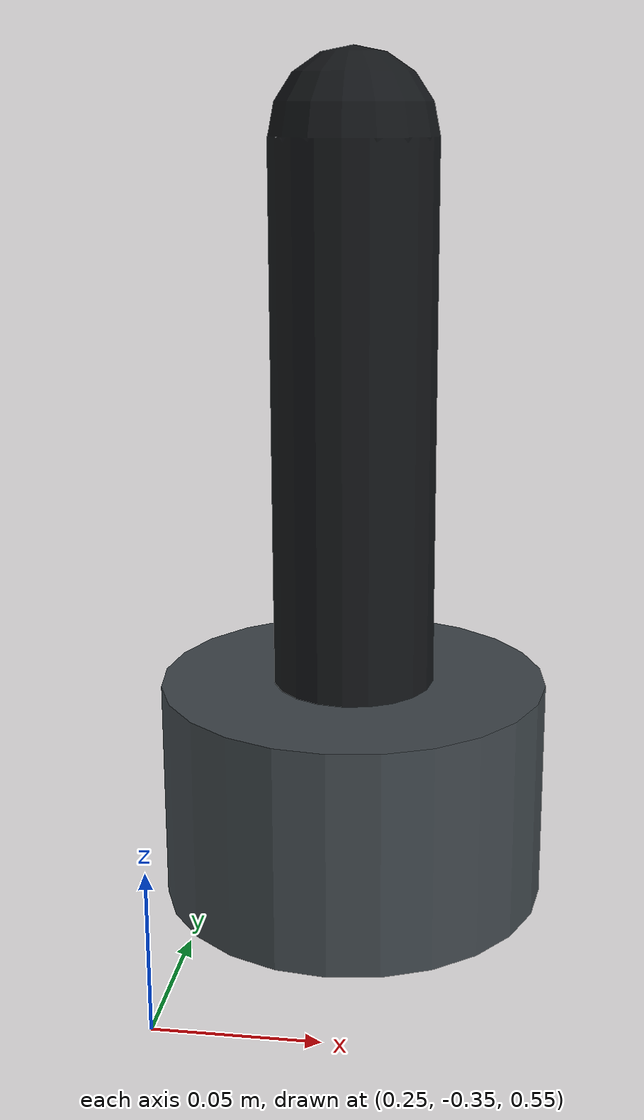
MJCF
<?xml version='1.0' encoding='utf-8'?>
<mujoco model="control_stick">
  <compiler angle="radian" />
  <option timestep="0.002" gravity="0.0 0.0 -9.81" />
  <default>
    <geom friction="0.8 0.01 0.0001" />
  </default>
  <worldbody>
    <light name="control_stick_light" pos="-0.5 -0.5 2" />
    <body name="control_stick_base" pos="0.3 -0.28 0.6">
      <geom name="stick_base_geom" type="cylinder" size="0.06 0.035" contype="0" conaffinity="0" rgba="0.25 0.28 0.30 1" />
      <body name="stick_roll_frame">
        <joint name="stick_roll_joint" type="hinge" axis="1 0 0" range="-0.3 0.3" stiffness="5.0" damping="0.15" frictionloss="0.05" />
        <geom name="stick_roll_hub" type="sphere" size="0.025" mass="0.05" contype="0" conaffinity="0" rgba="0.3 0.32 0.34 1" />
        <body name="stick_pitch_frame">
          <joint name="stick_pitch_joint" type="hinge" axis="0 1 0" range="-0.3 0.3" stiffness="5.0" damping="0.15" frictionloss="0.05" />
          <geom name="stick_handle" type="capsule" fromto="0 0 0 0 0 0.2" size="0.025" mass="0.25" friction="0.7 0.01 0.0001" rgba="0.08 0.09 0.10 1" />
          <site name="stick_force_site" pos="0 0 0.2" size="0.01" />
        </body>
      </body>
    </body>
  </worldbody>
  <sensor>
    <jointpos name="stick_roll_position" joint="stick_roll_joint" />
    <jointvel name="stick_roll_velocity" joint="stick_roll_joint" />
    <jointpos name="stick_pitch_position" joint="stick_pitch_joint" />
    <jointvel name="stick_pitch_velocity" joint="stick_pitch_joint" />
    <force name="stick_force" site="stick_force_site" />
    <torque name="stick_torque" site="stick_force_site" />
  </sensor>
</mujoco>
